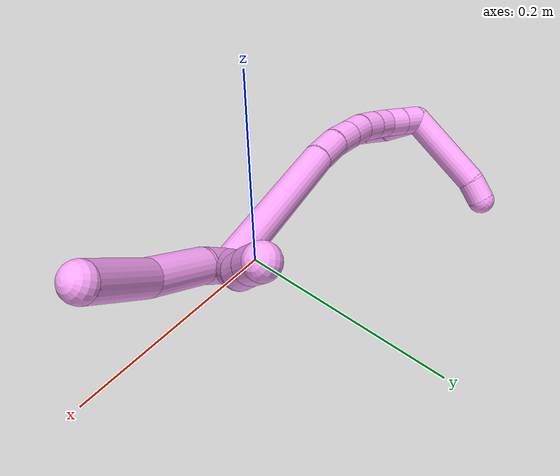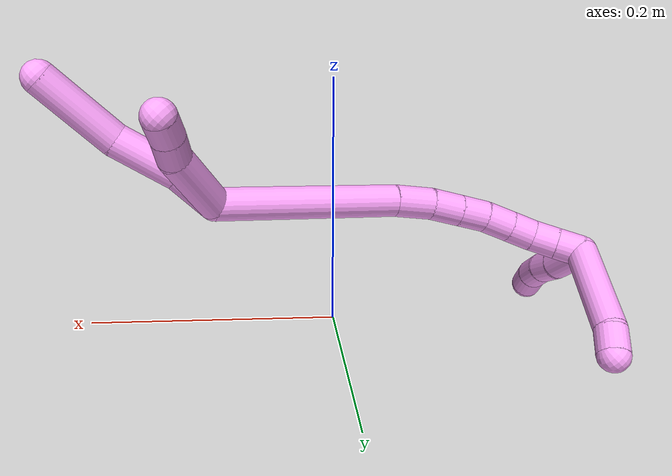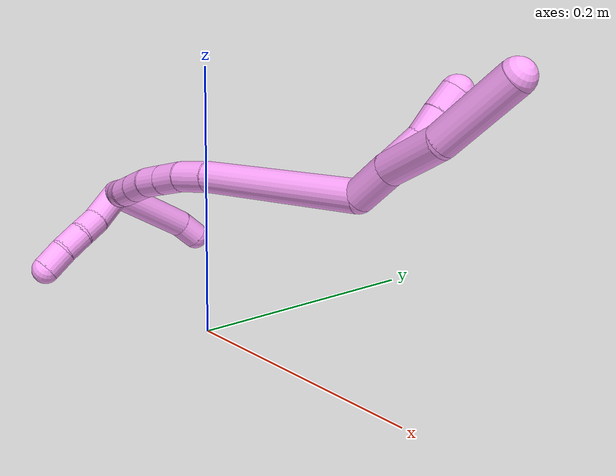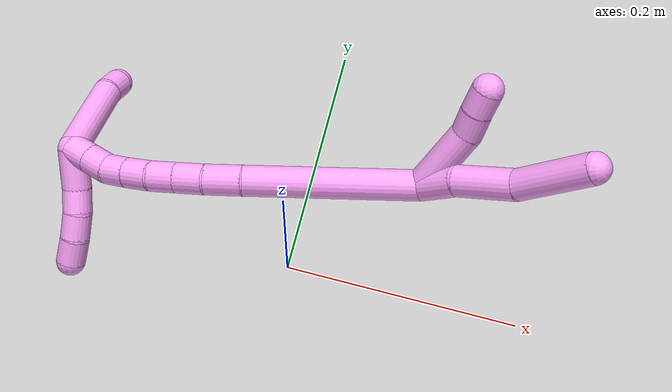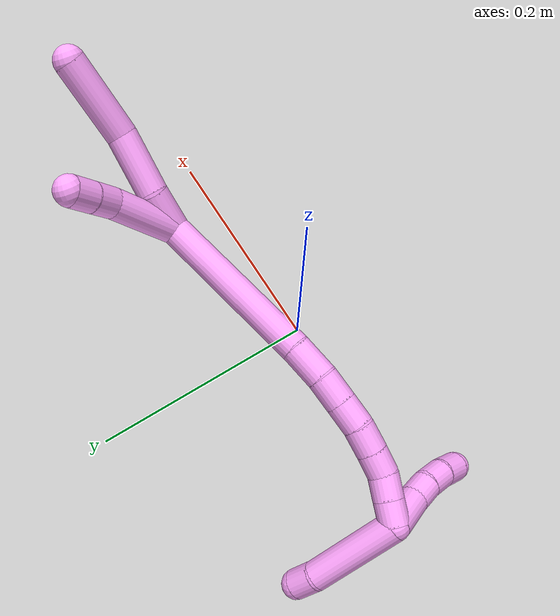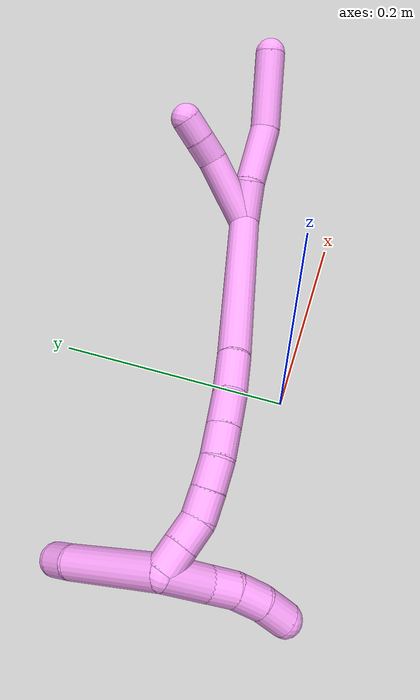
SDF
<sdf version="1.7">
 <world name="default">
  <model name="4">
   <static>0</static>
   <link name="4">
    <collision name="collision-cylinder-e_1_2_8">
     <pose>-0.000529 0.003066 0.016951 -0.178934 -0.030712 0.002755</pose>
     <geometry><cylinder><radius>0.0125</radius><length>0.034468</length></cylinder></geometry>
     <surface>
      <friction><ode><mu>1.16</mu><mu2>1.16</mu2><slip1>0</slip1><slip2>0</slip2></ode></friction>
      <contact><ode><kp>1e+06</kp><kd>1</kd><max_vel>0</max_vel><min_depth>0.001</min_depth></ode></contact>
     </surface>
    </collision>
    <visual name="visual-cylinder-e_1_2_8">
     <pose>-0.000529 0.003066 0.016951 -0.178934 -0.030712 0.002755</pose>
     <geometry><cylinder><radius>0.0125</radius><length>0.034468</length></cylinder></geometry>
     <material><ambient>1 0.65098 0.996078 1</ambient></material>
    </visual>
    <collision name="collision-cylinder-e_2_8_9">
     <pose>0.004186 0.010815 0.057917 -0.192604 0.21116 -0.020474</pose>
     <geometry><cylinder><radius>0.0125</radius><length>0.050047</length></cylinder></geometry>
     <surface>
      <friction><ode><mu>1.16</mu><mu2>1.16</mu2><slip1>0</slip1><slip2>0</slip2></ode></friction>
      <contact><ode><kp>1e+06</kp><kd>1</kd><max_vel>0</max_vel><min_depth>0.001</min_depth></ode></contact>
     </surface>
    </collision>
    <visual name="visual-cylinder-e_2_8_9">
     <pose>0.004186 0.010815 0.057917 -0.192604 0.21116 -0.020474</pose>
     <geometry><cylinder><radius>0.0125</radius><length>0.050047</length></cylinder></geometry>
     <material><ambient>1 0.65098 0.996078 1</ambient></material>
    </visual>
    <collision name="collision-cylinder-e_3_9_6">
     <pose>0.006973 0.023358 0.113622 -0.243112 -0.075152 0.009185</pose>
     <geometry><cylinder><radius>0.0125</radius><length>0.065486</length></cylinder></geometry>
     <surface>
      <friction><ode><mu>1.16</mu><mu2>1.16</mu2><slip1>0</slip1><slip2>0</slip2></ode></friction>
      <contact><ode><kp>1e+06</kp><kd>1</kd><max_vel>0</max_vel><min_depth>0.001</min_depth></ode></contact>
     </surface>
    </collision>
    <visual name="visual-cylinder-e_3_9_6">
     <pose>0.006973 0.023358 0.113622 -0.243112 -0.075152 0.009185</pose>
     <geometry><cylinder><radius>0.0125</radius><length>0.065486</length></cylinder></geometry>
     <material><ambient>1 0.65098 0.996078 1</ambient></material>
    </visual>
    <collision name="collision-cylinder-e_1_2_10">
     <pose>-0.013309 0.016083 0.020968 -0.654322 -0.466553 0.160915</pose>
     <geometry><cylinder><radius>0.0125</radius><length>0.059175</length></cylinder></geometry>
     <surface>
      <friction><ode><mu>1.16</mu><mu2>1.16</mu2><slip1>0</slip1><slip2>0</slip2></ode></friction>
      <contact><ode><kp>1e+06</kp><kd>1</kd><max_vel>0</max_vel><min_depth>0.001</min_depth></ode></contact>
     </surface>
    </collision>
    <visual name="visual-cylinder-e_1_2_10">
     <pose>-0.013309 0.016083 0.020968 -0.654322 -0.466553 0.160915</pose>
     <geometry><cylinder><radius>0.0125</radius><length>0.059175</length></cylinder></geometry>
     <material><ambient>1 0.65098 0.996078 1</ambient></material>
    </visual>
    <collision name="collision-cylinder-e_2_10_11">
     <pose>-0.033757 0.03651 0.048071 -0.61601 -0.759594 0.252628</pose>
     <geometry><cylinder><radius>0.0125</radius><length>0.020734</length></cylinder></geometry>
     <surface>
      <friction><ode><mu>1.16</mu><mu2>1.16</mu2><slip1>0</slip1><slip2>0</slip2></ode></friction>
      <contact><ode><kp>1e+06</kp><kd>1</kd><max_vel>0</max_vel><min_depth>0.001</min_depth></ode></contact>
     </surface>
    </collision>
    <visual name="visual-cylinder-e_2_10_11">
     <pose>-0.033757 0.03651 0.048071 -0.61601 -0.759594 0.252628</pose>
     <geometry><cylinder><radius>0.0125</radius><length>0.020734</length></cylinder></geometry>
     <material><ambient>1 0.65098 0.996078 1</ambient></material>
    </visual>
    <collision name="collision-cylinder-e_3_11_5">
     <pose>-0.04737 0.045557 0.060278 -0.659173 -0.700434 0.248605</pose>
     <geometry><cylinder><radius>0.0125</radius><length>0.02009</length></cylinder></geometry>
     <surface>
      <friction><ode><mu>1.16</mu><mu2>1.16</mu2><slip1>0</slip1><slip2>0</slip2></ode></friction>
      <contact><ode><kp>1e+06</kp><kd>1</kd><max_vel>0</max_vel><min_depth>0.001</min_depth></ode></contact>
     </surface>
    </collision>
    <visual name="visual-cylinder-e_3_11_5">
     <pose>-0.04737 0.045557 0.060278 -0.659173 -0.700434 0.248605</pose>
     <geometry><cylinder><radius>0.0125</radius><length>0.02009</length></cylinder></geometry>
     <material><ambient>1 0.65098 0.996078 1</ambient></material>
    </visual>
    <collision name="collision-cylinder-e_1_2_12">
     <pose>-0.034571 -0.036958 -0.04855 2.49094 -0.515488 -1.32672</pose>
     <geometry><cylinder><radius>0.0125</radius><length>0.140259</length></cylinder></geometry>
     <surface>
      <friction><ode><mu>1.16</mu><mu2>1.16</mu2><slip1>0</slip1><slip2>0</slip2></ode></friction>
      <contact><ode><kp>1e+06</kp><kd>1</kd><max_vel>0</max_vel><min_depth>0.001</min_depth></ode></contact>
     </surface>
    </collision>
    <visual name="visual-cylinder-e_1_2_12">
     <pose>-0.034571 -0.036958 -0.04855 2.49094 -0.515488 -1.32672</pose>
     <geometry><cylinder><radius>0.0125</radius><length>0.140259</length></cylinder></geometry>
     <material><ambient>1 0.65098 0.996078 1</ambient></material>
    </visual>
    <collision name="collision-cylinder-e_2_12_13">
     <pose>-0.075885 -0.081098 -0.108689 2.58674 -0.459291 -1.37472</pose>
     <geometry><cylinder><radius>0.0125</radius><length>0.030421</length></cylinder></geometry>
     <surface>
      <friction><ode><mu>1.16</mu><mu2>1.16</mu2><slip1>0</slip1><slip2>0</slip2></ode></friction>
      <contact><ode><kp>1e+06</kp><kd>1</kd><max_vel>0</max_vel><min_depth>0.001</min_depth></ode></contact>
     </surface>
    </collision>
    <visual name="visual-cylinder-e_2_12_13">
     <pose>-0.075885 -0.081098 -0.108689 2.58674 -0.459291 -1.37472</pose>
     <geometry><cylinder><radius>0.0125</radius><length>0.030421</length></cylinder></geometry>
     <material><ambient>1 0.65098 0.996078 1</ambient></material>
    </visual>
    <collision name="collision-cylinder-e_3_13_14">
     <pose>-0.087273 -0.092784 -0.130546 2.72825 -0.392777 -1.51839</pose>
     <geometry><cylinder><radius>0.0125</radius><length>0.024273</length></cylinder></geometry>
     <surface>
      <friction><ode><mu>1.16</mu><mu2>1.16</mu2><slip1>0</slip1><slip2>0</slip2></ode></friction>
      <contact><ode><kp>1e+06</kp><kd>1</kd><max_vel>0</max_vel><min_depth>0.001</min_depth></ode></contact>
     </surface>
    </collision>
    <visual name="visual-cylinder-e_3_13_14">
     <pose>-0.087273 -0.092784 -0.130546 2.72825 -0.392777 -1.51839</pose>
     <geometry><cylinder><radius>0.0125</radius><length>0.024273</length></cylinder></geometry>
     <material><ambient>1 0.65098 0.996078 1</ambient></material>
    </visual>
    <collision name="collision-cylinder-e_4_14_15">
     <pose>-0.096222 -0.101425 -0.150364 2.73285 -0.392124 -1.52817</pose>
     <geometry><cylinder><radius>0.0125</radius><length>0.022524</length></cylinder></geometry>
     <surface>
      <friction><ode><mu>1.16</mu><mu2>1.16</mu2><slip1>0</slip1><slip2>0</slip2></ode></friction>
      <contact><ode><kp>1e+06</kp><kd>1</kd><max_vel>0</max_vel><min_depth>0.001</min_depth></ode></contact>
     </surface>
    </collision>
    <visual name="visual-cylinder-e_4_14_15">
     <pose>-0.096222 -0.101425 -0.150364 2.73285 -0.392124 -1.52817</pose>
     <geometry><cylinder><radius>0.0125</radius><length>0.022524</length></cylinder></geometry>
     <material><ambient>1 0.65098 0.996078 1</ambient></material>
    </visual>
    <collision name="collision-cylinder-e_5_15_16">
     <pose>-0.10415 -0.10806 -0.16999 2.89846 -0.335852 -1.89267</pose>
     <geometry><cylinder><radius>0.0125</radius><length>0.021993</length></cylinder></geometry>
     <surface>
      <friction><ode><mu>1.16</mu><mu2>1.16</mu2><slip1>0</slip1><slip2>0</slip2></ode></friction>
      <contact><ode><kp>1e+06</kp><kd>1</kd><max_vel>0</max_vel><min_depth>0.001</min_depth></ode></contact>
     </surface>
    </collision>
    <visual name="visual-cylinder-e_5_15_16">
     <pose>-0.10415 -0.10806 -0.16999 2.89846 -0.335852 -1.89267</pose>
     <geometry><cylinder><radius>0.0125</radius><length>0.021993</length></cylinder></geometry>
     <material><ambient>1 0.65098 0.996078 1</ambient></material>
    </visual>
    <collision name="collision-cylinder-e_6_16_17">
     <pose>-0.111247 -0.112534 -0.189409 2.93333 -0.348829 -2.07091</pose>
     <geometry><cylinder><radius>0.0125</radius><length>0.020321</length></cylinder></geometry>
     <surface>
      <friction><ode><mu>1.16</mu><mu2>1.16</mu2><slip1>0</slip1><slip2>0</slip2></ode></friction>
      <contact><ode><kp>1e+06</kp><kd>1</kd><max_vel>0</max_vel><min_depth>0.001</min_depth></ode></contact>
     </surface>
    </collision>
    <visual name="visual-cylinder-e_6_16_17">
     <pose>-0.111247 -0.112534 -0.189409 2.93333 -0.348829 -2.07091</pose>
     <geometry><cylinder><radius>0.0125</radius><length>0.020321</length></cylinder></geometry>
     <material><ambient>1 0.65098 0.996078 1</ambient></material>
    </visual>
    <collision name="collision-cylinder-e_7_17_18">
     <pose>-0.11997 -0.114162 -0.207265 -3.10097 -0.552185 2.99845</pose>
     <geometry><cylinder><radius>0.0125</radius><length>0.020016</length></cylinder></geometry>
     <surface>
      <friction><ode><mu>1.16</mu><mu2>1.16</mu2><slip1>0</slip1><slip2>0</slip2></ode></friction>
      <contact><ode><kp>1e+06</kp><kd>1</kd><max_vel>0</max_vel><min_depth>0.001</min_depth></ode></contact>
     </surface>
    </collision>
    <visual name="visual-cylinder-e_7_17_18">
     <pose>-0.11997 -0.114162 -0.207265 -3.10097 -0.552185 2.99845</pose>
     <geometry><cylinder><radius>0.0125</radius><length>0.020016</length></cylinder></geometry>
     <material><ambient>1 0.65098 0.996078 1</ambient></material>
    </visual>
    <collision name="collision-cylinder-e_8_18_1">
     <pose>-0.130548 -0.113577 -0.224351 -3.11362 -0.555983 3.04366</pose>
     <geometry><cylinder><radius>0.0125</radius><length>0.020194</length></cylinder></geometry>
     <surface>
      <friction><ode><mu>1.16</mu><mu2>1.16</mu2><slip1>0</slip1><slip2>0</slip2></ode></friction>
      <contact><ode><kp>1e+06</kp><kd>1</kd><max_vel>0</max_vel><min_depth>0.001</min_depth></ode></contact>
     </surface>
    </collision>
    <visual name="visual-cylinder-e_8_18_1">
     <pose>-0.130548 -0.113577 -0.224351 -3.11362 -0.555983 3.04366</pose>
     <geometry><cylinder><radius>0.0125</radius><length>0.020194</length></cylinder></geometry>
     <material><ambient>1 0.65098 0.996078 1</ambient></material>
    </visual>
    <collision name="collision-cylinder-e_1_1_19">
     <pose>-0.136287 -0.077359 -0.24918 -1.99518 -0.010393 0.0161</pose>
     <geometry><cylinder><radius>0.0125</radius><length>0.078965</length></cylinder></geometry>
     <surface>
      <friction><ode><mu>1.16</mu><mu2>1.16</mu2><slip1>0</slip1><slip2>0</slip2></ode></friction>
      <contact><ode><kp>1e+06</kp><kd>1</kd><max_vel>0</max_vel><min_depth>0.001</min_depth></ode></contact>
     </surface>
    </collision>
    <visual name="visual-cylinder-e_1_1_19">
     <pose>-0.136287 -0.077359 -0.24918 -1.99518 -0.010393 0.0161</pose>
     <geometry><cylinder><radius>0.0125</radius><length>0.078965</length></cylinder></geometry>
     <material><ambient>1 0.65098 0.996078 1</ambient></material>
    </visual>
    <collision name="collision-cylinder-e_2_19_4">
     <pose>-0.134305 -0.03219 -0.269957 -2.02791 0.229497 -0.366116</pose>
     <geometry><cylinder><radius>0.0125</radius><length>0.021035</length></cylinder></geometry>
     <surface>
      <friction><ode><mu>1.16</mu><mu2>1.16</mu2><slip1>0</slip1><slip2>0</slip2></ode></friction>
      <contact><ode><kp>1e+06</kp><kd>1</kd><max_vel>0</max_vel><min_depth>0.001</min_depth></ode></contact>
     </surface>
    </collision>
    <visual name="visual-cylinder-e_2_19_4">
     <pose>-0.134305 -0.03219 -0.269957 -2.02791 0.229497 -0.366116</pose>
     <geometry><cylinder><radius>0.0125</radius><length>0.021035</length></cylinder></geometry>
     <material><ambient>1 0.65098 0.996078 1</ambient></material>
    </visual>
    <collision name="collision-cylinder-e_1_1_20">
     <pose>-0.121043 -0.12218 -0.235046 1.80631 1.02084 1.23504</pose>
     <geometry><cylinder><radius>0.0125</radius><length>0.0348</length></cylinder></geometry>
     <surface>
      <friction><ode><mu>1.16</mu><mu2>1.16</mu2><slip1>0</slip1><slip2>0</slip2></ode></friction>
      <contact><ode><kp>1e+06</kp><kd>1</kd><max_vel>0</max_vel><min_depth>0.001</min_depth></ode></contact>
     </surface>
    </collision>
    <visual name="visual-cylinder-e_1_1_20">
     <pose>-0.121043 -0.12218 -0.235046 1.80631 1.02084 1.23504</pose>
     <geometry><cylinder><radius>0.0125</radius><length>0.0348</length></cylinder></geometry>
     <material><ambient>1 0.65098 0.996078 1</ambient></material>
    </visual>
    <collision name="collision-cylinder-e_2_20_21">
     <pose>-0.098171 -0.137429 -0.237693 1.65256 0.896202 0.961746</pose>
     <geometry><cylinder><radius>0.0125</radius><length>0.020583</length></cylinder></geometry>
     <surface>
      <friction><ode><mu>1.16</mu><mu2>1.16</mu2><slip1>0</slip1><slip2>0</slip2></ode></friction>
      <contact><ode><kp>1e+06</kp><kd>1</kd><max_vel>0</max_vel><min_depth>0.001</min_depth></ode></contact>
     </surface>
    </collision>
    <visual name="visual-cylinder-e_2_20_21">
     <pose>-0.098171 -0.137429 -0.237693 1.65256 0.896202 0.961746</pose>
     <geometry><cylinder><radius>0.0125</radius><length>0.020583</length></cylinder></geometry>
     <material><ambient>1 0.65098 0.996078 1</ambient></material>
    </visual>
    <collision name="collision-cylinder-e_3_21_22">
     <pose>-0.081914 -0.150782 -0.240823 1.92957 0.836588 1.14069</pose>
     <geometry><cylinder><radius>0.0125</radius><length>0.022145</length></cylinder></geometry>
     <surface>
      <friction><ode><mu>1.16</mu><mu2>1.16</mu2><slip1>0</slip1><slip2>0</slip2></ode></friction>
      <contact><ode><kp>1e+06</kp><kd>1</kd><max_vel>0</max_vel><min_depth>0.001</min_depth></ode></contact>
     </surface>
    </collision>
    <visual name="visual-cylinder-e_3_21_22">
     <pose>-0.081914 -0.150782 -0.240823 1.92957 0.836588 1.14069</pose>
     <geometry><cylinder><radius>0.0125</radius><length>0.022145</length></cylinder></geometry>
     <material><ambient>1 0.65098 0.996078 1</ambient></material>
    </visual>
    <collision name="collision-cylinder-e_4_22_3">
     <pose>-0.065627 -0.1641 -0.247962 2.18934 0.800898 1.37468</pose>
     <geometry><cylinder><radius>0.0125</radius><length>0.022472</length></cylinder></geometry>
     <surface>
      <friction><ode><mu>1.16</mu><mu2>1.16</mu2><slip1>0</slip1><slip2>0</slip2></ode></friction>
      <contact><ode><kp>1e+06</kp><kd>1</kd><max_vel>0</max_vel><min_depth>0.001</min_depth></ode></contact>
     </surface>
    </collision>
    <visual name="visual-cylinder-e_4_22_3">
     <pose>-0.065627 -0.1641 -0.247962 2.18934 0.800898 1.37468</pose>
     <geometry><cylinder><radius>0.0125</radius><length>0.022472</length></cylinder></geometry>
     <material><ambient>1 0.65098 0.996078 1</ambient></material>
    </visual>
    <collision name="collision-sphere-3">
     <pose>-0.05756 -0.170472 -0.252497 0 -0 0</pose>
     <geometry><sphere><radius>0.0125</radius></sphere></geometry>
     <surface>
      <friction><ode><mu>1.16</mu><mu2>1.16</mu2><slip1>0</slip1><slip2>0</slip2></ode></friction>
      <contact><ode><kp>1e+06</kp><kd>1</kd><max_vel>0</max_vel><min_depth>0.001</min_depth></ode></contact>
     </surface>
    </collision>
    <visual name="visual-sphere-3">
     <pose>-0.05756 -0.170472 -0.252497 0 -0 0</pose>
     <geometry><sphere><radius>0.0125</radius></sphere></geometry>
     <material><ambient>1 0.65098 0.996078 1</ambient></material>
    </visual>
    <collision name="collision-sphere-22">
     <pose>-0.073694 -0.157728 -0.243427 0 -0 0</pose>
     <geometry><sphere><radius>0.0125</radius></sphere></geometry>
     <surface>
      <friction><ode><mu>1.16</mu><mu2>1.16</mu2><slip1>0</slip1><slip2>0</slip2></ode></friction>
      <contact><ode><kp>1e+06</kp><kd>1</kd><max_vel>0</max_vel><min_depth>0.001</min_depth></ode></contact>
     </surface>
    </collision>
    <visual name="visual-sphere-22">
     <pose>-0.073694 -0.157728 -0.243427 0 -0 0</pose>
     <geometry><sphere><radius>0.0125</radius></sphere></geometry>
     <material><ambient>1 0.65098 0.996078 1</ambient></material>
    </visual>
    <collision name="collision-sphere-21">
     <pose>-0.090134 -0.143836 -0.238218 0 -0 0</pose>
     <geometry><sphere><radius>0.0125</radius></sphere></geometry>
     <surface>
      <friction><ode><mu>1.16</mu><mu2>1.16</mu2><slip1>0</slip1><slip2>0</slip2></ode></friction>
      <contact><ode><kp>1e+06</kp><kd>1</kd><max_vel>0</max_vel><min_depth>0.001</min_depth></ode></contact>
     </surface>
    </collision>
    <visual name="visual-sphere-21">
     <pose>-0.090134 -0.143836 -0.238218 0 -0 0</pose>
     <geometry><sphere><radius>0.0125</radius></sphere></geometry>
     <material><ambient>1 0.65098 0.996078 1</ambient></material>
    </visual>
    <collision name="collision-sphere-20">
     <pose>-0.106208 -0.131023 -0.237168 0 -0 0</pose>
     <geometry><sphere><radius>0.0125</radius></sphere></geometry>
     <surface>
      <friction><ode><mu>1.16</mu><mu2>1.16</mu2><slip1>0</slip1><slip2>0</slip2></ode></friction>
      <contact><ode><kp>1e+06</kp><kd>1</kd><max_vel>0</max_vel><min_depth>0.001</min_depth></ode></contact>
     </surface>
    </collision>
    <visual name="visual-sphere-20">
     <pose>-0.106208 -0.131023 -0.237168 0 -0 0</pose>
     <geometry><sphere><radius>0.0125</radius></sphere></geometry>
     <material><ambient>1 0.65098 0.996078 1</ambient></material>
    </visual>
    <collision name="collision-sphere-4">
     <pose>-0.131913 -0.023 -0.274477 0 -0 0</pose>
     <geometry><sphere><radius>0.0125</radius></sphere></geometry>
     <surface>
      <friction><ode><mu>1.16</mu><mu2>1.16</mu2><slip1>0</slip1><slip2>0</slip2></ode></friction>
      <contact><ode><kp>1e+06</kp><kd>1</kd><max_vel>0</max_vel><min_depth>0.001</min_depth></ode></contact>
     </surface>
    </collision>
    <visual name="visual-sphere-4">
     <pose>-0.131913 -0.023 -0.274477 0 -0 0</pose>
     <geometry><sphere><radius>0.0125</radius></sphere></geometry>
     <material><ambient>1 0.65098 0.996078 1</ambient></material>
    </visual>
    <collision name="collision-sphere-11">
     <pose>-0.040896 0.040853 0.054206 0 -0 0</pose>
     <geometry><sphere><radius>0.0125</radius></sphere></geometry>
     <surface>
      <friction><ode><mu>1.16</mu><mu2>1.16</mu2><slip1>0</slip1><slip2>0</slip2></ode></friction>
      <contact><ode><kp>1e+06</kp><kd>1</kd><max_vel>0</max_vel><min_depth>0.001</min_depth></ode></contact>
     </surface>
    </collision>
    <visual name="visual-sphere-11">
     <pose>-0.040896 0.040853 0.054206 0 -0 0</pose>
     <geometry><sphere><radius>0.0125</radius></sphere></geometry>
     <material><ambient>1 0.65098 0.996078 1</ambient></material>
    </visual>
    <collision name="collision-sphere-10">
     <pose>-0.026618 0.032166 0.041935 0 -0 0</pose>
     <geometry><sphere><radius>0.0125</radius></sphere></geometry>
     <surface>
      <friction><ode><mu>1.16</mu><mu2>1.16</mu2><slip1>0</slip1><slip2>0</slip2></ode></friction>
      <contact><ode><kp>1e+06</kp><kd>1</kd><max_vel>0</max_vel><min_depth>0.001</min_depth></ode></contact>
     </surface>
    </collision>
    <visual name="visual-sphere-10">
     <pose>-0.026618 0.032166 0.041935 0 -0 0</pose>
     <geometry><sphere><radius>0.0125</radius></sphere></geometry>
     <material><ambient>1 0.65098 0.996078 1</ambient></material>
    </visual>
    <collision name="collision-sphere-6">
     <pose>0.004514 0.031218 0.145312 0 -0 0</pose>
     <geometry><sphere><radius>0.0125</radius></sphere></geometry>
     <surface>
      <friction><ode><mu>1.16</mu><mu2>1.16</mu2><slip1>0</slip1><slip2>0</slip2></ode></friction>
      <contact><ode><kp>1e+06</kp><kd>1</kd><max_vel>0</max_vel><min_depth>0.001</min_depth></ode></contact>
     </surface>
    </collision>
    <visual name="visual-sphere-6">
     <pose>0.004514 0.031218 0.145312 0 -0 0</pose>
     <geometry><sphere><radius>0.0125</radius></sphere></geometry>
     <material><ambient>1 0.65098 0.996078 1</ambient></material>
    </visual>
    <collision name="collision-sphere-9">
     <pose>0.009431 0.015499 0.081932 0 -0 0</pose>
     <geometry><sphere><radius>0.0125</radius></sphere></geometry>
     <surface>
      <friction><ode><mu>1.16</mu><mu2>1.16</mu2><slip1>0</slip1><slip2>0</slip2></ode></friction>
      <contact><ode><kp>1e+06</kp><kd>1</kd><max_vel>0</max_vel><min_depth>0.001</min_depth></ode></contact>
     </surface>
    </collision>
    <visual name="visual-sphere-9">
     <pose>0.009431 0.015499 0.081932 0 -0 0</pose>
     <geometry><sphere><radius>0.0125</radius></sphere></geometry>
     <material><ambient>1 0.65098 0.996078 1</ambient></material>
    </visual>
    <collision name="collision-sphere-2">
     <geometry><sphere><radius>0.0125</radius></sphere></geometry>
     <surface>
      <friction><ode><mu>1.16</mu><mu2>1.16</mu2><slip1>0</slip1><slip2>0</slip2></ode></friction>
      <contact><ode><kp>1e+06</kp><kd>1</kd><max_vel>0</max_vel><min_depth>0.001</min_depth></ode></contact>
     </surface>
    </collision>
    <visual name="visual-sphere-2">
     <geometry><sphere><radius>0.0125</radius></sphere></geometry>
     <material><ambient>1 0.65098 0.996078 1</ambient></material>
    </visual>
    <collision name="collision-sphere-19">
     <pose>-0.136698 -0.04138 -0.265437 0 -0 0</pose>
     <geometry><sphere><radius>0.0125</radius></sphere></geometry>
     <surface>
      <friction><ode><mu>1.16</mu><mu2>1.16</mu2><slip1>0</slip1><slip2>0</slip2></ode></friction>
      <contact><ode><kp>1e+06</kp><kd>1</kd><max_vel>0</max_vel><min_depth>0.001</min_depth></ode></contact>
     </surface>
    </collision>
    <visual name="visual-sphere-19">
     <pose>-0.136698 -0.04138 -0.265437 0 -0 0</pose>
     <geometry><sphere><radius>0.0125</radius></sphere></geometry>
     <material><ambient>1 0.65098 0.996078 1</ambient></material>
    </visual>
    <collision name="collision-sphere-8">
     <pose>-0.001058 0.006132 0.033901 0 -0 0</pose>
     <geometry><sphere><radius>0.0125</radius></sphere></geometry>
     <surface>
      <friction><ode><mu>1.16</mu><mu2>1.16</mu2><slip1>0</slip1><slip2>0</slip2></ode></friction>
      <contact><ode><kp>1e+06</kp><kd>1</kd><max_vel>0</max_vel><min_depth>0.001</min_depth></ode></contact>
     </surface>
    </collision>
    <visual name="visual-sphere-8">
     <pose>-0.001058 0.006132 0.033901 0 -0 0</pose>
     <geometry><sphere><radius>0.0125</radius></sphere></geometry>
     <material><ambient>1 0.65098 0.996078 1</ambient></material>
    </visual>
    <collision name="collision-sphere-5">
     <pose>-0.053845 0.050261 0.066349 0 -0 0</pose>
     <geometry><sphere><radius>0.0125</radius></sphere></geometry>
     <surface>
      <friction><ode><mu>1.16</mu><mu2>1.16</mu2><slip1>0</slip1><slip2>0</slip2></ode></friction>
      <contact><ode><kp>1e+06</kp><kd>1</kd><max_vel>0</max_vel><min_depth>0.001</min_depth></ode></contact>
     </surface>
    </collision>
    <visual name="visual-sphere-5">
     <pose>-0.053845 0.050261 0.066349 0 -0 0</pose>
     <geometry><sphere><radius>0.0125</radius></sphere></geometry>
     <material><ambient>1 0.65098 0.996078 1</ambient></material>
    </visual>
    <collision name="collision-sphere-12">
     <pose>-0.069142 -0.073916 -0.0971 0 -0 0</pose>
     <geometry><sphere><radius>0.0125</radius></sphere></geometry>
     <surface>
      <friction><ode><mu>1.16</mu><mu2>1.16</mu2><slip1>0</slip1><slip2>0</slip2></ode></friction>
      <contact><ode><kp>1e+06</kp><kd>1</kd><max_vel>0</max_vel><min_depth>0.001</min_depth></ode></contact>
     </surface>
    </collision>
    <visual name="visual-sphere-12">
     <pose>-0.069142 -0.073916 -0.0971 0 -0 0</pose>
     <geometry><sphere><radius>0.0125</radius></sphere></geometry>
     <material><ambient>1 0.65098 0.996078 1</ambient></material>
    </visual>
    <collision name="collision-sphere-13">
     <pose>-0.082628 -0.088281 -0.120278 0 -0 0</pose>
     <geometry><sphere><radius>0.0125</radius></sphere></geometry>
     <surface>
      <friction><ode><mu>1.16</mu><mu2>1.16</mu2><slip1>0</slip1><slip2>0</slip2></ode></friction>
      <contact><ode><kp>1e+06</kp><kd>1</kd><max_vel>0</max_vel><min_depth>0.001</min_depth></ode></contact>
     </surface>
    </collision>
    <visual name="visual-sphere-13">
     <pose>-0.082628 -0.088281 -0.120278 0 -0 0</pose>
     <geometry><sphere><radius>0.0125</radius></sphere></geometry>
     <material><ambient>1 0.65098 0.996078 1</ambient></material>
    </visual>
    <collision name="collision-sphere-14">
     <pose>-0.091918 -0.097288 -0.140814 0 -0 0</pose>
     <geometry><sphere><radius>0.0125</radius></sphere></geometry>
     <surface>
      <friction><ode><mu>1.16</mu><mu2>1.16</mu2><slip1>0</slip1><slip2>0</slip2></ode></friction>
      <contact><ode><kp>1e+06</kp><kd>1</kd><max_vel>0</max_vel><min_depth>0.001</min_depth></ode></contact>
     </surface>
    </collision>
    <visual name="visual-sphere-14">
     <pose>-0.091918 -0.097288 -0.140814 0 -0 0</pose>
     <geometry><sphere><radius>0.0125</radius></sphere></geometry>
     <material><ambient>1 0.65098 0.996078 1</ambient></material>
    </visual>
    <collision name="collision-sphere-15">
     <pose>-0.100526 -0.105561 -0.159914 0 -0 0</pose>
     <geometry><sphere><radius>0.0125</radius></sphere></geometry>
     <surface>
      <friction><ode><mu>1.16</mu><mu2>1.16</mu2><slip1>0</slip1><slip2>0</slip2></ode></friction>
      <contact><ode><kp>1e+06</kp><kd>1</kd><max_vel>0</max_vel><min_depth>0.001</min_depth></ode></contact>
     </surface>
    </collision>
    <visual name="visual-sphere-15">
     <pose>-0.100526 -0.105561 -0.159914 0 -0 0</pose>
     <geometry><sphere><radius>0.0125</radius></sphere></geometry>
     <material><ambient>1 0.65098 0.996078 1</ambient></material>
    </visual>
    <collision name="collision-sphere-16">
     <pose>-0.107774 -0.11056 -0.180067 0 -0 0</pose>
     <geometry><sphere><radius>0.0125</radius></sphere></geometry>
     <surface>
      <friction><ode><mu>1.16</mu><mu2>1.16</mu2><slip1>0</slip1><slip2>0</slip2></ode></friction>
      <contact><ode><kp>1e+06</kp><kd>1</kd><max_vel>0</max_vel><min_depth>0.001</min_depth></ode></contact>
     </surface>
    </collision>
    <visual name="visual-sphere-16">
     <pose>-0.107774 -0.11056 -0.180067 0 -0 0</pose>
     <geometry><sphere><radius>0.0125</radius></sphere></geometry>
     <material><ambient>1 0.65098 0.996078 1</ambient></material>
    </visual>
    <collision name="collision-sphere-17">
     <pose>-0.11472 -0.114508 -0.198751 0 -0 0</pose>
     <geometry><sphere><radius>0.0125</radius></sphere></geometry>
     <surface>
      <friction><ode><mu>1.16</mu><mu2>1.16</mu2><slip1>0</slip1><slip2>0</slip2></ode></friction>
      <contact><ode><kp>1e+06</kp><kd>1</kd><max_vel>0</max_vel><min_depth>0.001</min_depth></ode></contact>
     </surface>
    </collision>
    <visual name="visual-sphere-17">
     <pose>-0.11472 -0.114508 -0.198751 0 -0 0</pose>
     <geometry><sphere><radius>0.0125</radius></sphere></geometry>
     <material><ambient>1 0.65098 0.996078 1</ambient></material>
    </visual>
    <collision name="collision-sphere-18">
     <pose>-0.125219 -0.113816 -0.215778 0 -0 0</pose>
     <geometry><sphere><radius>0.0125</radius></sphere></geometry>
     <surface>
      <friction><ode><mu>1.16</mu><mu2>1.16</mu2><slip1>0</slip1><slip2>0</slip2></ode></friction>
      <contact><ode><kp>1e+06</kp><kd>1</kd><max_vel>0</max_vel><min_depth>0.001</min_depth></ode></contact>
     </surface>
    </collision>
    <visual name="visual-sphere-18">
     <pose>-0.125219 -0.113816 -0.215778 0 -0 0</pose>
     <geometry><sphere><radius>0.0125</radius></sphere></geometry>
     <material><ambient>1 0.65098 0.996078 1</ambient></material>
    </visual>
    <collision name="collision-sphere-1">
     <pose>-0.135877 -0.113337 -0.232924 0 -0 0</pose>
     <geometry><sphere><radius>0.0125</radius></sphere></geometry>
     <surface>
      <friction><ode><mu>1.16</mu><mu2>1.16</mu2><slip1>0</slip1><slip2>0</slip2></ode></friction>
      <contact><ode><kp>1e+06</kp><kd>1</kd><max_vel>0</max_vel><min_depth>0.001</min_depth></ode></contact>
     </surface>
    </collision>
    <visual name="visual-sphere-1">
     <pose>-0.135877 -0.113337 -0.232924 0 -0 0</pose>
     <geometry><sphere><radius>0.0125</radius></sphere></geometry>
     <material><ambient>1 0.65098 0.996078 1</ambient></material>
    </visual>
    <inertial>
     <pose>-0.061242 -0.050029 -0.090531 0 -0 0</pose>
     <mass>0.75</mass>
     <inertia>
      <ixx>-5.1e-05</ixx>
      <ixy>0</ixy>
      <ixz>0</ixz>
      <iyy>-0.000123</iyy>
      <iyz>0</iyz>
      <izz>0.000188</izz>
     </inertia>
    </inertial>
   </link>
   <pose>0.092453 0.064161 0.113218 -0.313203 0.728525 -0.580189</pose>
  </model>
 </world>
</sdf>
